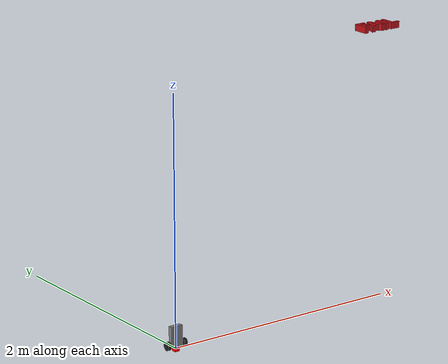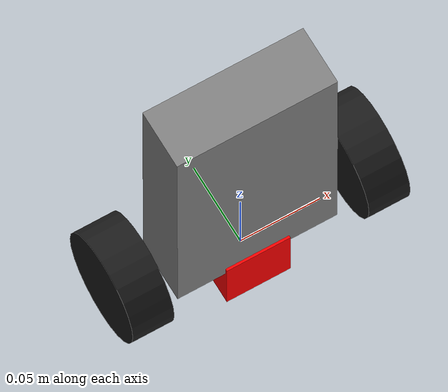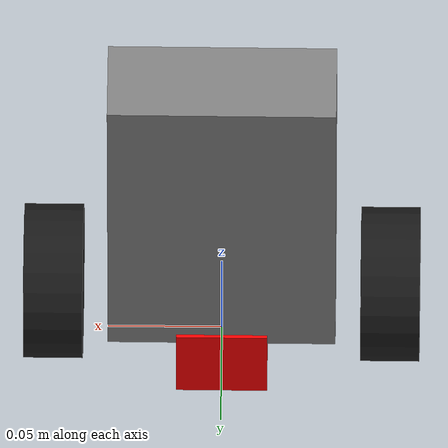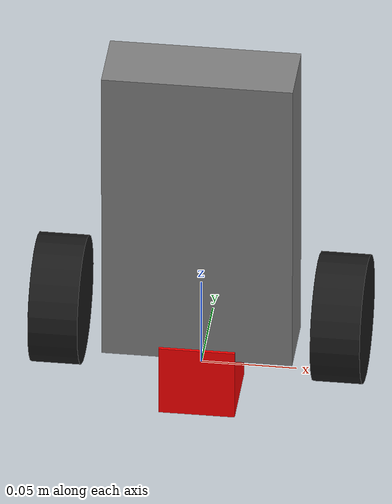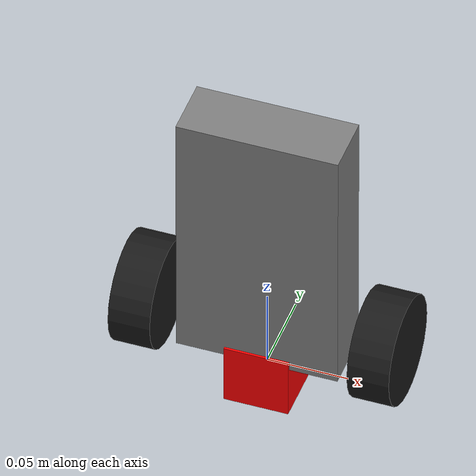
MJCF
<mujoco model="robot scene">
  <compiler angle="radian" inertiafromgeom="true"/>
  <option gravity="0 0 -9.81" timestep="0.00002" integrator="implicitfast"/>

  <include file="robot-02.xml"/>

  <statistic center="0 0 0.1" extent="0.8"/>

  <visual>
    <headlight diffuse="0.6 0.6 0.6" ambient="0.3 0.3 0.3" specular="0 0 0"/>
    <rgba haze="0.15 0.25 0.35 1"/>
    <global azimuth="120" elevation="-20"/>
  </visual>

  <asset>
    <texture type="skybox" builtin="gradient" rgb1="0.8 0.8 0.8" rgb2="0 0 0" width="512" height="3072"/>
    <texture type="2d" name="groundplane" builtin="checker" mark="edge" rgb1="0.2 0.3 0.4" rgb2="0.1 0.2 0.3"
      markrgb="0.8 0.8 0.8" width="300" height="300"/>
    <material name="groundplane" texture="groundplane" texuniform="true" texrepeat="5 5" reflectance="0.2"/>
    <texture type="2d" name="wheel_texture" builtin="checker" mark="edge" rgb1="0.0 0.0 0.0" rgb2="0.2 0.2 0.2"
      markrgb="0.3 0.3 0.3" width="300" height="300"/>
    <material name="wheel_material" texture="wheel_texture" texuniform="true" texrepeat="5 5"/>
    <material name="block" rgba="1 0 0 1"/>
    <mesh name="fail_mesh" file="env03_v1_fail.stl" scale="0.006 0.006 0.006"/>
  </asset>

  <worldbody>
    <light pos="0 0 1.5" dir="-0.5 -0.5 -1" directional="true"/>
    <geom name="floor" size="0 0 0.05" pos="0 0 -0.02" type="plane" material="groundplane"/>
  </worldbody>

  <worldbody>
    <body name="block">
      <joint name="block_joint" type="free"/>
      <geom size="0.02 0.02 0.02" pos="0.0 0.0 0.0" type="box" material="block" margin="0.002" solref="0.005 0.9"/>
      <inertial mass="0.2" pos="0.01 0.01 0.01"/>
    </body>
  </worldbody>

  <worldbody>
    <body name="fail" pos="10 10 -1">
      <joint name="fail_joint" type="free"/>
      <geom name="my_geom" type="mesh" mesh="fail_mesh" rgba="1 0 0 1"  mass="0.5">
      </geom>
    </body>
  </worldbody>

</mujoco>

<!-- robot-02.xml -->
<mujoco model="balance">

  <worldbody>
    <body name="robot_body">
      <joint name="robot_body_joint" type="free"/>
      <geom size="0.05 0.0185 0.0855" pos="0 0 0.0995" type="box"/>
      <inertial pos="0 0.0 0.057" mass="0.514" />

      <body name="l_wheel" pos="-0.074 0 0.034">
        <inertial pos="0 0 0" mass="0.032"/>
        <joint name="torso_l_wheel" type="hinge" pos="0 0 0" axis="-1 0 0" damping="0.01"/>
        <geom name="l_wheel_geom" size="0.034 0.013" quat="0.707107 0 0.707107 0" type="cylinder"  material="wheel_material"/>
      </body>
      <body name="r_wheel" pos="0.074 0 0.034">
        <inertial pos="0 0 0" mass="0.032"/>
        <joint name="torso_r_wheel" type="hinge" pos="0 0 0" axis="1 0 0" damping="0.01"/>
        <geom name="r_wheel_geom" size="0.034 0.013" quat="0.707107 0 0.707107 0" type="cylinder" material="wheel_material"/>
      </body>
    </body>
  </worldbody>

  <actuator>
    <velocity name="motor_l_wheel" joint="torso_l_wheel" ctrllimited="true" ctrlrange="-78.54 78.54" kv="4.0" forcelimited="true" forcerange="-0.65 0.65"/>
    <velocity name="motor_r_wheel" joint="torso_r_wheel" ctrllimited="true" ctrlrange="-78.54 78.54" kv="4.0" forcelimited="true" forcerange="-0.65 0.65"/>
  </actuator>

</mujoco>
